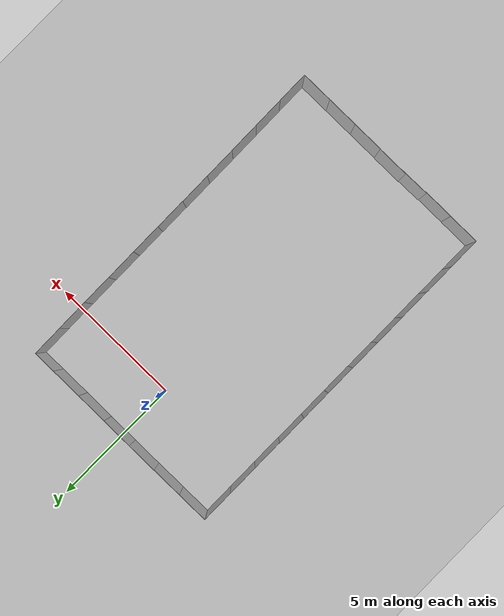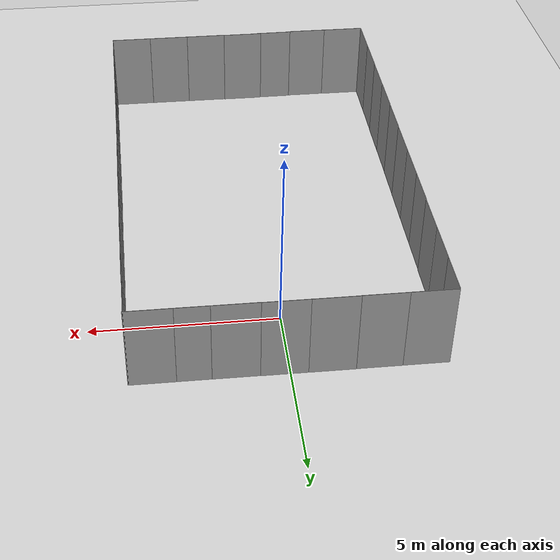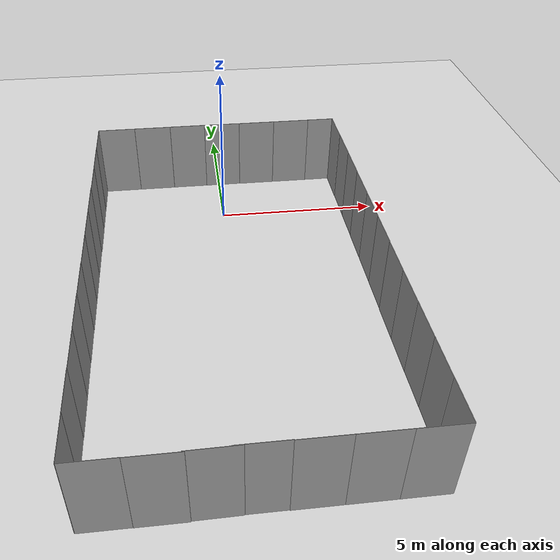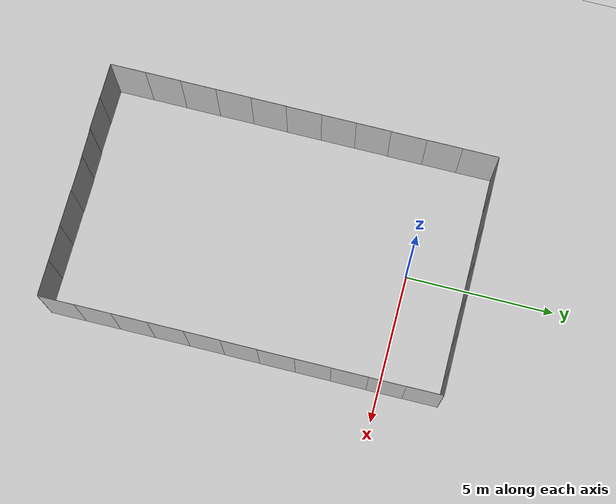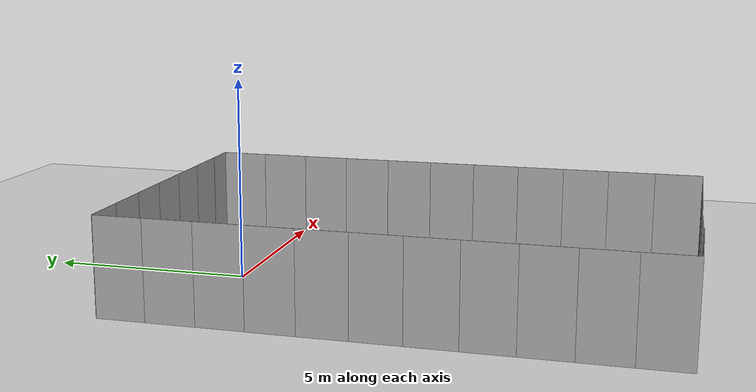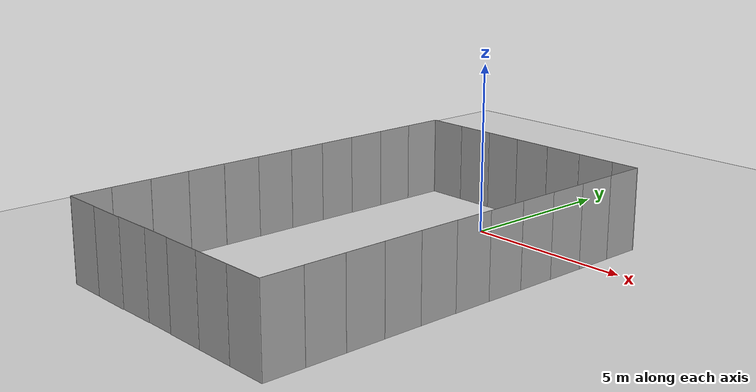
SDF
<sdf version="1.6">
 <world name="default">
  <light name="sun" type="directional">
   <pose>0 0 10 0 -0 0</pose>
   <diffuse>0.8 0.8 0.8 1</diffuse>
   <specular>0.2 0.2 0.2 1</specular>
   <attenuation>
    <range>1000</range>
    <constant>0.9</constant>
    <linear>0.01</linear>
    <quadratic>0.001</quadratic>
   </attenuation>
   <direction>-0.5 0.1 -0.9</direction>
  </light>
  <model name="ground_plane">
   <static>1</static>
   <link name="link">
    <collision name="collision">
     <geometry><plane><normal>0 0 1</normal><size>100 100</size></plane></geometry>
     <surface><friction><ode><mu>100</mu><mu2>50</mu2></ode></friction></surface>
    </collision>
    <visual name="visual">
     <cast_shadows>0</cast_shadows>
     <geometry><plane><normal>0 0 1</normal><size>100 100</size></plane></geometry>
     <material>
      <script><uri>file://media/materials/scripts/gazebo.material</uri><name>Gazebo/Grey</name></script>
     </material>
    </visual>
   </link>
  </model>
  <gravity>0 0 -9.8</gravity>
  <magnetic_field>6e-06 2.3e-05 -4.2e-05</magnetic_field>
  <atmosphere type="adiabatic"/>
  <physics name="default_physics" default="0" type="ode">
   <max_step_size>0.001</max_step_size>
   <real_time_factor>1</real_time_factor>
   <real_time_update_rate>1000</real_time_update_rate>
  </physics>
  <scene><ambient>0.4 0.4 0.4 1</ambient><background>0.7 0.7 0.7 1</background><shadows>1</shadows></scene>
  <spherical_coordinates>
   <surface_model>EARTH_WGS84</surface_model>
   <latitude_deg>0</latitude_deg>
   <longitude_deg>0</longitude_deg>
   <elevation>0</elevation>
   <heading_deg>0</heading_deg>
  </spherical_coordinates>
  <model name="nist_maze_wall_240">
   <static>1</static>
   <link name="nist__maze_wall_240_link">
    <collision name="collision">
     <geometry>
      <mesh><uri>model://nist_maze_wall_240/meshes/nist_maze_wall_240.dae</uri><scale>1 1 1</scale></mesh>
     </geometry>
    </collision>
    <visual name="visual">
     <geometry>
      <mesh><uri>model://nist_maze_wall_240/meshes/nist_maze_wall_240.dae</uri><scale>1 1 1</scale></mesh>
     </geometry>
    </visual>
   </link>
   <pose>-3.4014 1.39031 0 0 -0 0</pose>
  </model>
  <model name="nist_maze_wall_240_clone">
   <static>1</static>
   <link name="nist__maze_wall_240_link">
    <collision name="collision">
     <geometry>
      <mesh><uri>model://nist_maze_wall_240/meshes/nist_maze_wall_240.dae</uri><scale>1 1 1</scale></mesh>
     </geometry>
    </collision>
    <visual name="visual">
     <geometry>
      <mesh><uri>model://nist_maze_wall_240/meshes/nist_maze_wall_240.dae</uri><scale>1 1 1</scale></mesh>
     </geometry>
    </visual>
   </link>
   <pose>-2.21285 1.3925 0 0 -0 0</pose>
  </model>
  <model name="nist_maze_wall_240_clone_0">
   <static>1</static>
   <link name="nist__maze_wall_240_link">
    <collision name="collision">
     <geometry>
      <mesh><uri>model://nist_maze_wall_240/meshes/nist_maze_wall_240.dae</uri><scale>1 1 1</scale></mesh>
     </geometry>
    </collision>
    <visual name="visual">
     <geometry>
      <mesh><uri>model://nist_maze_wall_240/meshes/nist_maze_wall_240.dae</uri><scale>1 1 1</scale></mesh>
     </geometry>
    </visual>
   </link>
   <pose>-1.04177 1.3981 0 0 -0 0</pose>
  </model>
  <model name="nist_maze_wall_240_clone_1">
   <static>1</static>
   <link name="nist__maze_wall_240_link">
    <collision name="collision">
     <geometry>
      <mesh><uri>model://nist_maze_wall_240/meshes/nist_maze_wall_240.dae</uri><scale>1 1 1</scale></mesh>
     </geometry>
    </collision>
    <visual name="visual">
     <geometry>
      <mesh><uri>model://nist_maze_wall_240/meshes/nist_maze_wall_240.dae</uri><scale>1 1 1</scale></mesh>
     </geometry>
    </visual>
   </link>
   <pose>0.143059 1.39665 0 0 -0 0</pose>
  </model>
  <model name="nist_maze_wall_240_clone_1_clone">
   <static>1</static>
   <link name="nist__maze_wall_240_link">
    <collision name="collision">
     <geometry>
      <mesh><uri>model://nist_maze_wall_240/meshes/nist_maze_wall_240.dae</uri><scale>1 1 1</scale></mesh>
     </geometry>
    </collision>
    <visual name="visual">
     <geometry>
      <mesh><uri>model://nist_maze_wall_240/meshes/nist_maze_wall_240.dae</uri><scale>1 1 1</scale></mesh>
     </geometry>
    </visual>
   </link>
   <pose>1.33923 1.39098 0 0 -0 0</pose>
  </model>
  <model name="nist_maze_wall_240_clone_1_clone_clone">
   <static>1</static>
   <link name="nist__maze_wall_240_link">
    <collision name="collision">
     <geometry>
      <mesh><uri>model://nist_maze_wall_240/meshes/nist_maze_wall_240.dae</uri><scale>1 1 1</scale></mesh>
     </geometry>
    </collision>
    <visual name="visual">
     <geometry>
      <mesh><uri>model://nist_maze_wall_240/meshes/nist_maze_wall_240.dae</uri><scale>1 1 1</scale></mesh>
     </geometry>
    </visual>
   </link>
   <pose>2.53802 1.38973 0 0 -0 0</pose>
  </model>
  <model name="nist_maze_wall_240_clone_1_clone_clone_clone">
   <static>1</static>
   <link name="nist__maze_wall_240_link">
    <collision name="collision">
     <geometry>
      <mesh><uri>model://nist_maze_wall_240/meshes/nist_maze_wall_240.dae</uri><scale>1 1 1</scale></mesh>
     </geometry>
    </collision>
    <visual name="visual">
     <geometry>
      <mesh><uri>model://nist_maze_wall_240/meshes/nist_maze_wall_240.dae</uri><scale>1 1 1</scale></mesh>
     </geometry>
    </visual>
   </link>
   <pose>3.40104 1.39153 0 0 -0 0</pose>
  </model>
  <model name="nist_maze_wall_240_clone_1_clone_clone_clone_clone">
   <static>1</static>
   <link name="nist__maze_wall_240_link">
    <collision name="collision">
     <geometry>
      <mesh><uri>model://nist_maze_wall_240/meshes/nist_maze_wall_240.dae</uri><scale>1 1 1</scale></mesh>
     </geometry>
    </collision>
    <visual name="visual">
     <geometry>
      <mesh><uri>model://nist_maze_wall_240/meshes/nist_maze_wall_240.dae</uri><scale>1 1 1</scale></mesh>
     </geometry>
    </visual>
   </link>
   <pose>4.58461 1.407 0 0 -0 1.5789</pose>
  </model>
  <model name="nist_maze_wall_240_clone_1_clone_clone_clone_clone_clone">
   <static>1</static>
   <link name="nist__maze_wall_240_link">
    <collision name="collision">
     <geometry>
      <mesh><uri>model://nist_maze_wall_240/meshes/nist_maze_wall_240.dae</uri><scale>1 1 1</scale></mesh>
     </geometry>
    </collision>
    <visual name="visual">
     <geometry>
      <mesh><uri>model://nist_maze_wall_240/meshes/nist_maze_wall_240.dae</uri><scale>1 1 1</scale></mesh>
     </geometry>
    </visual>
   </link>
   <pose>4.59927 0.212213 0 0 -0 1.5789</pose>
  </model>
  <model name="nist_maze_wall_240_clone_1_clone_clone_clone_clone_clone_0">
   <static>1</static>
   <link name="nist__maze_wall_240_link">
    <collision name="collision">
     <geometry>
      <mesh><uri>model://nist_maze_wall_240/meshes/nist_maze_wall_240.dae</uri><scale>1 1 1</scale></mesh>
     </geometry>
    </collision>
    <visual name="visual">
     <geometry>
      <mesh><uri>model://nist_maze_wall_240/meshes/nist_maze_wall_240.dae</uri><scale>1 1 1</scale></mesh>
     </geometry>
    </visual>
   </link>
   <pose>4.60567 -0.981303 0 0 -0 1.5789</pose>
  </model>
  <model name="nist_maze_wall_240_clone_1_clone_clone_clone_clone_clone_1">
   <static>1</static>
   <link name="nist__maze_wall_240_link">
    <collision name="collision">
     <geometry>
      <mesh><uri>model://nist_maze_wall_240/meshes/nist_maze_wall_240.dae</uri><scale>1 1 1</scale></mesh>
     </geometry>
    </collision>
    <visual name="visual">
     <geometry>
      <mesh><uri>model://nist_maze_wall_240/meshes/nist_maze_wall_240.dae</uri><scale>1 1 1</scale></mesh>
     </geometry>
    </visual>
   </link>
   <pose>4.61024 -2.15747 0 0 -0 1.5789</pose>
  </model>
  <model name="nist_maze_wall_240_clone_1_clone_clone_clone_clone_clone_1_clone">
   <static>1</static>
   <link name="nist__maze_wall_240_link">
    <collision name="collision">
     <geometry>
      <mesh><uri>model://nist_maze_wall_240/meshes/nist_maze_wall_240.dae</uri><scale>1 1 1</scale></mesh>
     </geometry>
    </collision>
    <visual name="visual">
     <geometry>
      <mesh><uri>model://nist_maze_wall_240/meshes/nist_maze_wall_240.dae</uri><scale>1 1 1</scale></mesh>
     </geometry>
    </visual>
   </link>
   <pose>4.61841 -3.35533 0 0 -0 1.5789</pose>
  </model>
  <model name="nist_maze_wall_240_clone_1_clone_clone_clone_clone_clone_1_clone_0">
   <static>1</static>
   <link name="nist__maze_wall_240_link">
    <collision name="collision">
     <geometry>
      <mesh><uri>model://nist_maze_wall_240/meshes/nist_maze_wall_240.dae</uri><scale>1 1 1</scale></mesh>
     </geometry>
    </collision>
    <visual name="visual">
     <geometry>
      <mesh><uri>model://nist_maze_wall_240/meshes/nist_maze_wall_240.dae</uri><scale>1 1 1</scale></mesh>
     </geometry>
    </visual>
   </link>
   <pose>4.62233 -4.5414 0 0 -0 1.5789</pose>
  </model>
  <model name="nist_maze_wall_240_clone_1_clone_clone_clone_clone_clone_1_clone_1">
   <static>1</static>
   <link name="nist__maze_wall_240_link">
    <collision name="collision">
     <geometry>
      <mesh><uri>model://nist_maze_wall_240/meshes/nist_maze_wall_240.dae</uri><scale>1 1 1</scale></mesh>
     </geometry>
    </collision>
    <visual name="visual">
     <geometry>
      <mesh><uri>model://nist_maze_wall_240/meshes/nist_maze_wall_240.dae</uri><scale>1 1 1</scale></mesh>
     </geometry>
    </visual>
   </link>
   <pose>4.62426 -5.72673 0 0 -0 1.5789</pose>
  </model>
  <model name="nist_maze_wall_240_clone_1_clone_clone_clone_clone_clone_1_clone_2">
   <static>1</static>
   <link name="nist__maze_wall_240_link">
    <collision name="collision">
     <geometry>
      <mesh><uri>model://nist_maze_wall_240/meshes/nist_maze_wall_240.dae</uri><scale>1 1 1</scale></mesh>
     </geometry>
    </collision>
    <visual name="visual">
     <geometry>
      <mesh><uri>model://nist_maze_wall_240/meshes/nist_maze_wall_240.dae</uri><scale>1 1 1</scale></mesh>
     </geometry>
    </visual>
   </link>
   <pose>4.63267 -6.92141 0 0 -0 1.5789</pose>
  </model>
  <model name="nist_maze_wall_240_clone_1_clone_clone_clone_clone_clone_1_clone_3">
   <static>1</static>
   <link name="nist__maze_wall_240_link">
    <collision name="collision">
     <geometry>
      <mesh><uri>model://nist_maze_wall_240/meshes/nist_maze_wall_240.dae</uri><scale>1 1 1</scale></mesh>
     </geometry>
    </collision>
    <visual name="visual">
     <geometry>
      <mesh><uri>model://nist_maze_wall_240/meshes/nist_maze_wall_240.dae</uri><scale>1 1 1</scale></mesh>
     </geometry>
    </visual>
   </link>
   <pose>4.64532 -8.09592 0 0 -0 1.5789</pose>
  </model>
  <model name="nist_maze_wall_240_clone_1_clone_clone_clone_clone_clone_1_clone_4">
   <static>1</static>
   <link name="nist__maze_wall_240_link">
    <collision name="collision">
     <geometry>
      <mesh><uri>model://nist_maze_wall_240/meshes/nist_maze_wall_240.dae</uri><scale>1 1 1</scale></mesh>
     </geometry>
    </collision>
    <visual name="visual">
     <geometry>
      <mesh><uri>model://nist_maze_wall_240/meshes/nist_maze_wall_240.dae</uri><scale>1 1 1</scale></mesh>
     </geometry>
    </visual>
   </link>
   <pose>4.65683 -9.27469 0 0 -0 1.5789</pose>
  </model>
  <model name="nist_maze_wall_240_clone_1_clone_clone_clone_clone_clone_1_clone_5">
   <static>1</static>
   <link name="nist__maze_wall_240_link">
    <collision name="collision">
     <geometry>
      <mesh><uri>model://nist_maze_wall_240/meshes/nist_maze_wall_240.dae</uri><scale>1 1 1</scale></mesh>
     </geometry>
    </collision>
    <visual name="visual">
     <geometry>
      <mesh><uri>model://nist_maze_wall_240/meshes/nist_maze_wall_240.dae</uri><scale>1 1 1</scale></mesh>
     </geometry>
    </visual>
   </link>
   <pose>4.67054 -10.4673 0 0 -0 1.5789</pose>
  </model>
  <model name="nist_maze_wall_240_clone_1_clone_clone_clone_clone_clone_2">
   <static>1</static>
   <link name="nist__maze_wall_240_link">
    <collision name="collision">
     <geometry>
      <mesh><uri>model://nist_maze_wall_240/meshes/nist_maze_wall_240.dae</uri><scale>1 1 1</scale></mesh>
     </geometry>
    </collision>
    <visual name="visual">
     <geometry>
      <mesh><uri>model://nist_maze_wall_240/meshes/nist_maze_wall_240.dae</uri><scale>1 1 1</scale></mesh>
     </geometry>
    </visual>
   </link>
   <pose>-3.39755 1.3839 0 0 -0 1.57297</pose>
  </model>
  <model name="nist_maze_wall_240_clone_1_clone_clone_clone_clone_clone_2_clone">
   <static>1</static>
   <link name="nist__maze_wall_240_link">
    <collision name="collision">
     <geometry>
      <mesh><uri>model://nist_maze_wall_240/meshes/nist_maze_wall_240.dae</uri><scale>1 1 1</scale></mesh>
     </geometry>
    </collision>
    <visual name="visual">
     <geometry>
      <mesh><uri>model://nist_maze_wall_240/meshes/nist_maze_wall_240.dae</uri><scale>1 1 1</scale></mesh>
     </geometry>
    </visual>
   </link>
   <pose>-3.39737 0.195369 0 0 -0 1.57297</pose>
  </model>
  <model name="nist_maze_wall_240_clone_1_clone_clone_clone_clone_clone_2_clone_0">
   <static>1</static>
   <link name="nist__maze_wall_240_link">
    <collision name="collision">
     <geometry>
      <mesh><uri>model://nist_maze_wall_240/meshes/nist_maze_wall_240.dae</uri><scale>1 1 1</scale></mesh>
     </geometry>
    </collision>
    <visual name="visual">
     <geometry>
      <mesh><uri>model://nist_maze_wall_240/meshes/nist_maze_wall_240.dae</uri><scale>1 1 1</scale></mesh>
     </geometry>
    </visual>
   </link>
   <pose>-3.3925 -1.00108 0 0 -0 1.57297</pose>
  </model>
  <model name="nist_maze_wall_240_clone_1_clone_clone_clone_clone_clone_2_clone_1">
   <static>1</static>
   <link name="nist__maze_wall_240_link">
    <collision name="collision">
     <geometry>
      <mesh><uri>model://nist_maze_wall_240/meshes/nist_maze_wall_240.dae</uri><scale>1 1 1</scale></mesh>
     </geometry>
    </collision>
    <visual name="visual">
     <geometry>
      <mesh><uri>model://nist_maze_wall_240/meshes/nist_maze_wall_240.dae</uri><scale>1 1 1</scale></mesh>
     </geometry>
    </visual>
   </link>
   <pose>-3.40013 -2.17035 0 0 -0 1.57297</pose>
  </model>
  <model name="nist_maze_wall_240_clone_1_clone_clone_clone_clone_clone_2_clone_1_clone">
   <static>1</static>
   <link name="nist__maze_wall_240_link">
    <collision name="collision">
     <geometry>
      <mesh><uri>model://nist_maze_wall_240/meshes/nist_maze_wall_240.dae</uri><scale>1 1 1</scale></mesh>
     </geometry>
    </collision>
    <visual name="visual">
     <geometry>
      <mesh><uri>model://nist_maze_wall_240/meshes/nist_maze_wall_240.dae</uri><scale>1 1 1</scale></mesh>
     </geometry>
    </visual>
   </link>
   <pose>-3.39822 -3.33433 0 0 -0 1.57297</pose>
  </model>
  <model name="nist_maze_wall_240_clone_1_clone_clone_clone_clone_clone_2_clone_1_clone_0">
   <static>1</static>
   <link name="nist__maze_wall_240_link">
    <collision name="collision">
     <geometry>
      <mesh><uri>model://nist_maze_wall_240/meshes/nist_maze_wall_240.dae</uri><scale>1 1 1</scale></mesh>
     </geometry>
    </collision>
    <visual name="visual">
     <geometry>
      <mesh><uri>model://nist_maze_wall_240/meshes/nist_maze_wall_240.dae</uri><scale>1 1 1</scale></mesh>
     </geometry>
    </visual>
   </link>
   <pose>-3.39576 -4.52928 0 0 -0 1.57297</pose>
  </model>
  <model name="nist_maze_wall_240_clone_1_clone_clone_clone_clone_clone_2_clone_1_clone_1">
   <static>1</static>
   <link name="nist__maze_wall_240_link">
    <collision name="collision">
     <geometry>
      <mesh><uri>model://nist_maze_wall_240/meshes/nist_maze_wall_240.dae</uri><scale>1 1 1</scale></mesh>
     </geometry>
    </collision>
    <visual name="visual">
     <geometry>
      <mesh><uri>model://nist_maze_wall_240/meshes/nist_maze_wall_240.dae</uri><scale>1 1 1</scale></mesh>
     </geometry>
    </visual>
   </link>
   <pose>-3.39864 -5.71652 0 0 -0 1.57297</pose>
  </model>
  <model name="nist_maze_wall_240_clone_1_clone_clone_clone_clone_clone_2_clone_1_clone_2">
   <static>1</static>
   <link name="nist__maze_wall_240_link">
    <collision name="collision">
     <geometry>
      <mesh><uri>model://nist_maze_wall_240/meshes/nist_maze_wall_240.dae</uri><scale>1 1 1</scale></mesh>
     </geometry>
    </collision>
    <visual name="visual">
     <geometry>
      <mesh><uri>model://nist_maze_wall_240/meshes/nist_maze_wall_240.dae</uri><scale>1 1 1</scale></mesh>
     </geometry>
    </visual>
   </link>
   <pose>-3.40108 -6.91635 0 0 -0 1.57297</pose>
  </model>
  <model name="nist_maze_wall_240_clone_1_clone_clone_clone_clone_clone_2_clone_1_clone_3">
   <static>1</static>
   <link name="nist__maze_wall_240_link">
    <collision name="collision">
     <geometry>
      <mesh><uri>model://nist_maze_wall_240/meshes/nist_maze_wall_240.dae</uri><scale>1 1 1</scale></mesh>
     </geometry>
    </collision>
    <visual name="visual">
     <geometry>
      <mesh><uri>model://nist_maze_wall_240/meshes/nist_maze_wall_240.dae</uri><scale>1 1 1</scale></mesh>
     </geometry>
    </visual>
   </link>
   <pose>-3.39613 -8.10692 0 0 -0 1.57297</pose>
  </model>
  <model name="nist_maze_wall_240_clone_1_clone_clone_clone_clone_clone_2_clone_1_clone_4">
   <static>1</static>
   <link name="nist__maze_wall_240_link">
    <collision name="collision">
     <geometry>
      <mesh><uri>model://nist_maze_wall_240/meshes/nist_maze_wall_240.dae</uri><scale>1 1 1</scale></mesh>
     </geometry>
    </collision>
    <visual name="visual">
     <geometry>
      <mesh><uri>model://nist_maze_wall_240/meshes/nist_maze_wall_240.dae</uri><scale>1 1 1</scale></mesh>
     </geometry>
    </visual>
   </link>
   <pose>-3.39877 -9.30524 0 0 -0 1.57297</pose>
  </model>
  <model name="nist_maze_wall_240_clone_1_clone_clone_clone_clone_clone_2_clone_1_clone_5">
   <static>1</static>
   <link name="nist__maze_wall_240_link">
    <collision name="collision">
     <geometry>
      <mesh><uri>model://nist_maze_wall_240/meshes/nist_maze_wall_240.dae</uri><scale>1 1 1</scale></mesh>
     </geometry>
    </collision>
    <visual name="visual">
     <geometry>
      <mesh><uri>model://nist_maze_wall_240/meshes/nist_maze_wall_240.dae</uri><scale>1 1 1</scale></mesh>
     </geometry>
    </visual>
   </link>
   <pose>-3.39466 -10.4936 0 0 -0 1.57297</pose>
  </model>
  <model name="nist_maze_wall_240_clone_1_clone_0">
   <static>1</static>
   <link name="nist__maze_wall_240_link">
    <collision name="collision">
     <geometry>
      <mesh><uri>model://nist_maze_wall_240/meshes/nist_maze_wall_240.dae</uri><scale>1 1 1</scale></mesh>
     </geometry>
    </collision>
    <visual name="visual">
     <geometry>
      <mesh><uri>model://nist_maze_wall_240/meshes/nist_maze_wall_240.dae</uri><scale>1 1 1</scale></mesh>
     </geometry>
    </visual>
   </link>
   <pose>3.48103 -11.6696 0 0 -0 0</pose>
  </model>
  <model name="nist_maze_wall_240_clone_1_clone_1">
   <static>1</static>
   <link name="nist__maze_wall_240_link">
    <collision name="collision">
     <geometry>
      <mesh><uri>model://nist_maze_wall_240/meshes/nist_maze_wall_240.dae</uri><scale>1 1 1</scale></mesh>
     </geometry>
    </collision>
    <visual name="visual">
     <geometry>
      <mesh><uri>model://nist_maze_wall_240/meshes/nist_maze_wall_240.dae</uri><scale>1 1 1</scale></mesh>
     </geometry>
    </visual>
   </link>
   <pose>2.28917 -11.6689 0 0 -0 0</pose>
  </model>
  <model name="nist_maze_wall_240_clone_1_clone_2">
   <static>1</static>
   <link name="nist__maze_wall_240_link">
    <collision name="collision">
     <geometry>
      <mesh><uri>model://nist_maze_wall_240/meshes/nist_maze_wall_240.dae</uri><scale>1 1 1</scale></mesh>
     </geometry>
    </collision>
    <visual name="visual">
     <geometry>
      <mesh><uri>model://nist_maze_wall_240/meshes/nist_maze_wall_240.dae</uri><scale>1 1 1</scale></mesh>
     </geometry>
    </visual>
   </link>
   <pose>1.09501 -11.6679 0 0 -0 0</pose>
  </model>
  <model name="nist_maze_wall_240_clone_1_clone_3">
   <static>1</static>
   <link name="nist__maze_wall_240_link">
    <collision name="collision">
     <geometry>
      <mesh><uri>model://nist_maze_wall_240/meshes/nist_maze_wall_240.dae</uri><scale>1 1 1</scale></mesh>
     </geometry>
    </collision>
    <visual name="visual">
     <geometry>
      <mesh><uri>model://nist_maze_wall_240/meshes/nist_maze_wall_240.dae</uri><scale>1 1 1</scale></mesh>
     </geometry>
    </visual>
   </link>
   <pose>-0.104106 -11.6587 0 0 -0 0</pose>
  </model>
  <model name="nist_maze_wall_240_clone_1_clone_4">
   <static>1</static>
   <link name="nist__maze_wall_240_link">
    <collision name="collision">
     <geometry>
      <mesh><uri>model://nist_maze_wall_240/meshes/nist_maze_wall_240.dae</uri><scale>1 1 1</scale></mesh>
     </geometry>
    </collision>
    <visual name="visual">
     <geometry>
      <mesh><uri>model://nist_maze_wall_240/meshes/nist_maze_wall_240.dae</uri><scale>1 1 1</scale></mesh>
     </geometry>
    </visual>
   </link>
   <pose>-3.38792 -11.6911 0 0 -0 0</pose>
  </model>
  <model name="nist_maze_wall_240_clone_1_clone_5">
   <static>1</static>
   <link name="nist__maze_wall_240_link">
    <collision name="collision">
     <geometry>
      <mesh><uri>model://nist_maze_wall_240/meshes/nist_maze_wall_240.dae</uri><scale>1 1 1</scale></mesh>
     </geometry>
    </collision>
    <visual name="visual">
     <geometry>
      <mesh><uri>model://nist_maze_wall_240/meshes/nist_maze_wall_240.dae</uri><scale>1 1 1</scale></mesh>
     </geometry>
    </visual>
   </link>
   <pose>-2.19304 -11.6963 0 0 -0 0</pose>
  </model>
  <model name="nist_maze_wall_240_clone_1_clone_6">
   <static>1</static>
   <link name="nist__maze_wall_240_link">
    <collision name="collision">
     <geometry>
      <mesh><uri>model://nist_maze_wall_240/meshes/nist_maze_wall_240.dae</uri><scale>1 1 1</scale></mesh>
     </geometry>
    </collision>
    <visual name="visual">
     <geometry>
      <mesh><uri>model://nist_maze_wall_240/meshes/nist_maze_wall_240.dae</uri><scale>1 1 1</scale></mesh>
     </geometry>
    </visual>
   </link>
   <pose>-1.05476 -11.6746 0 0 -0 0.010136</pose>
  </model>
 </world>
</sdf>
